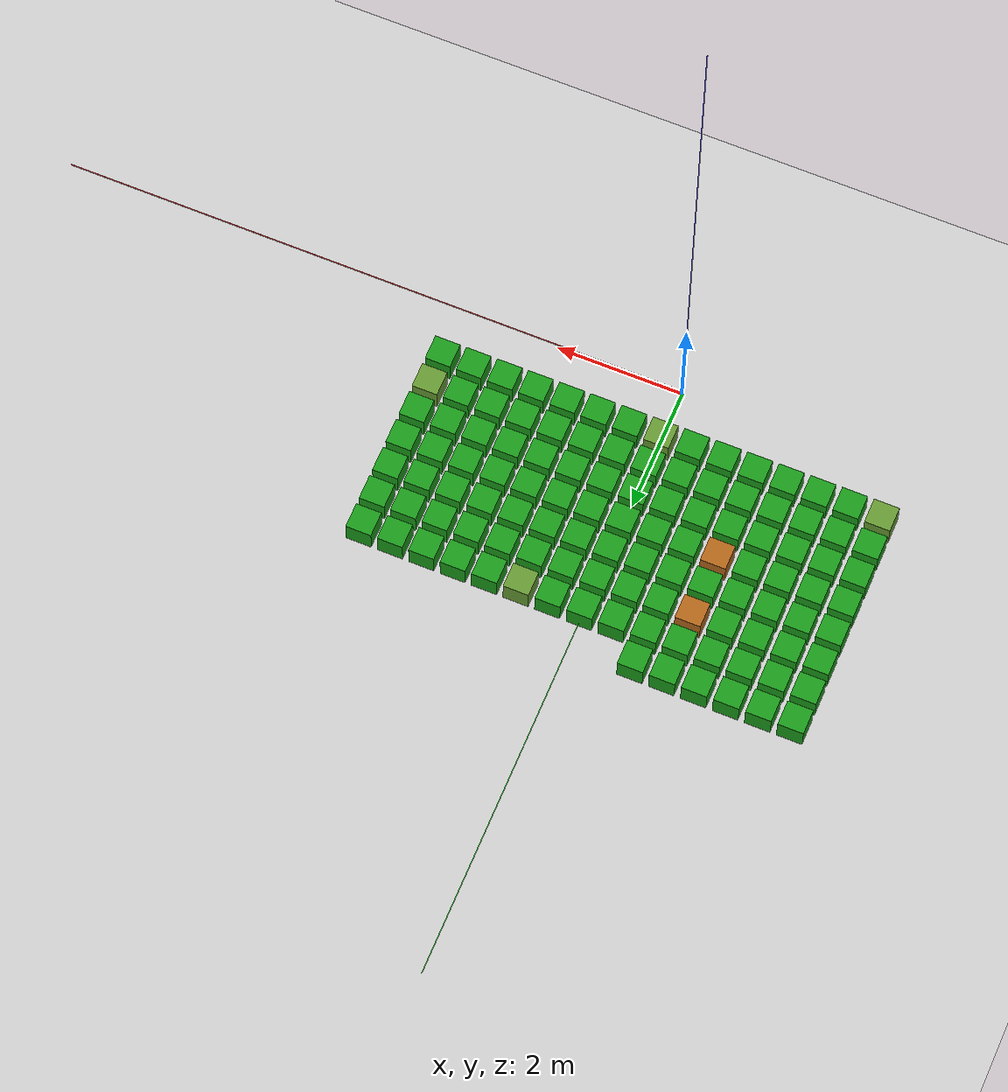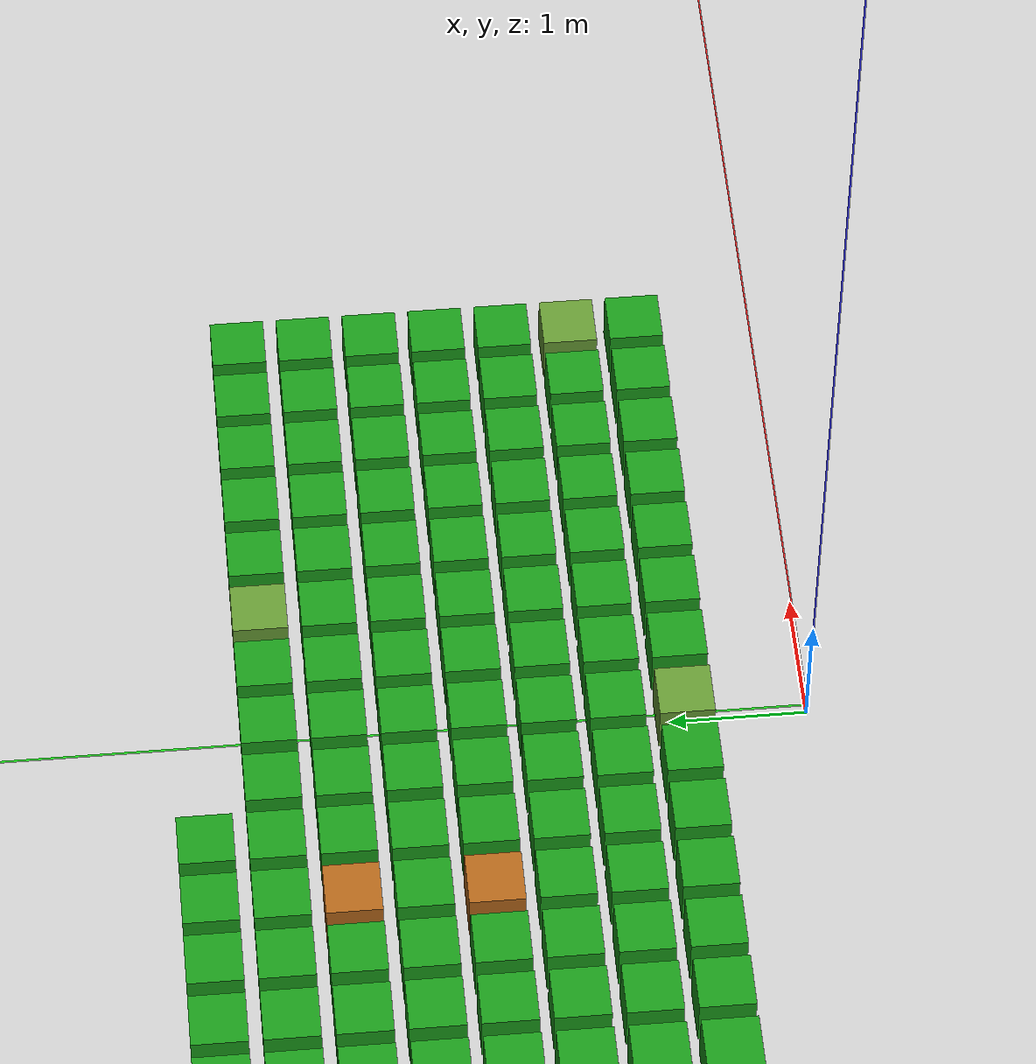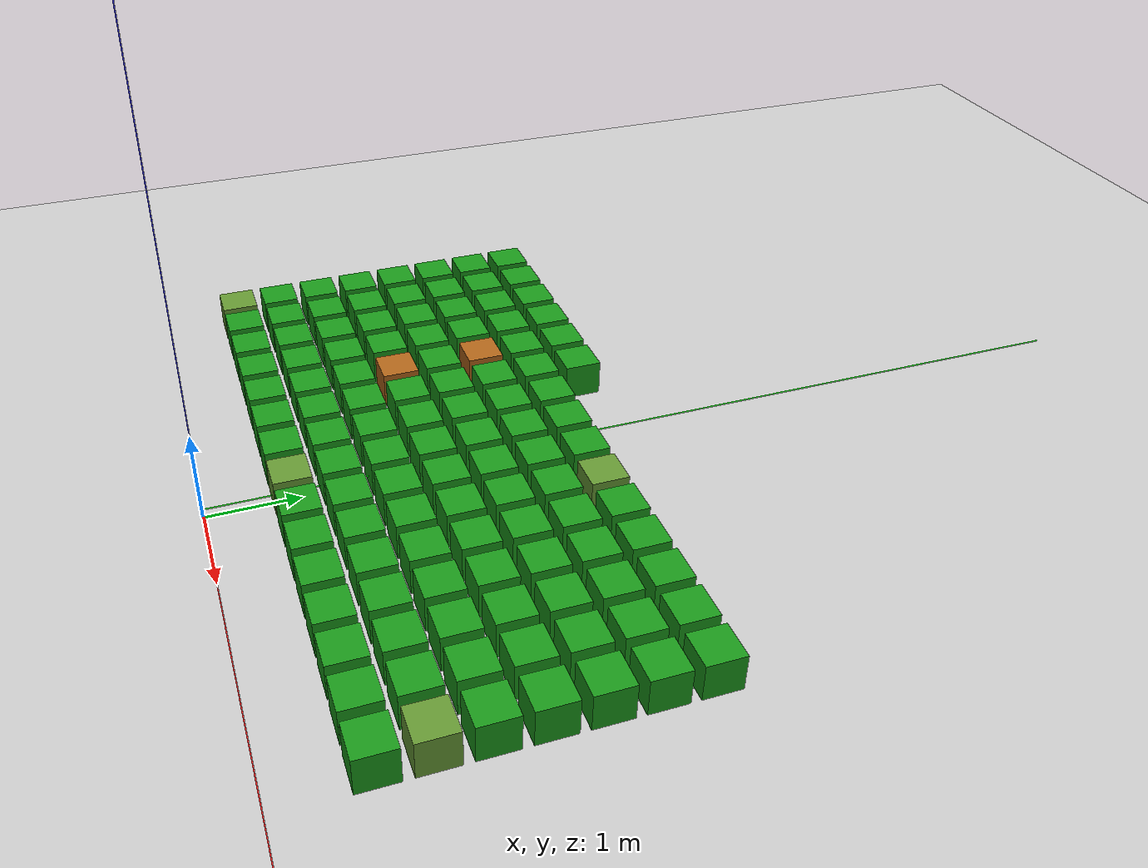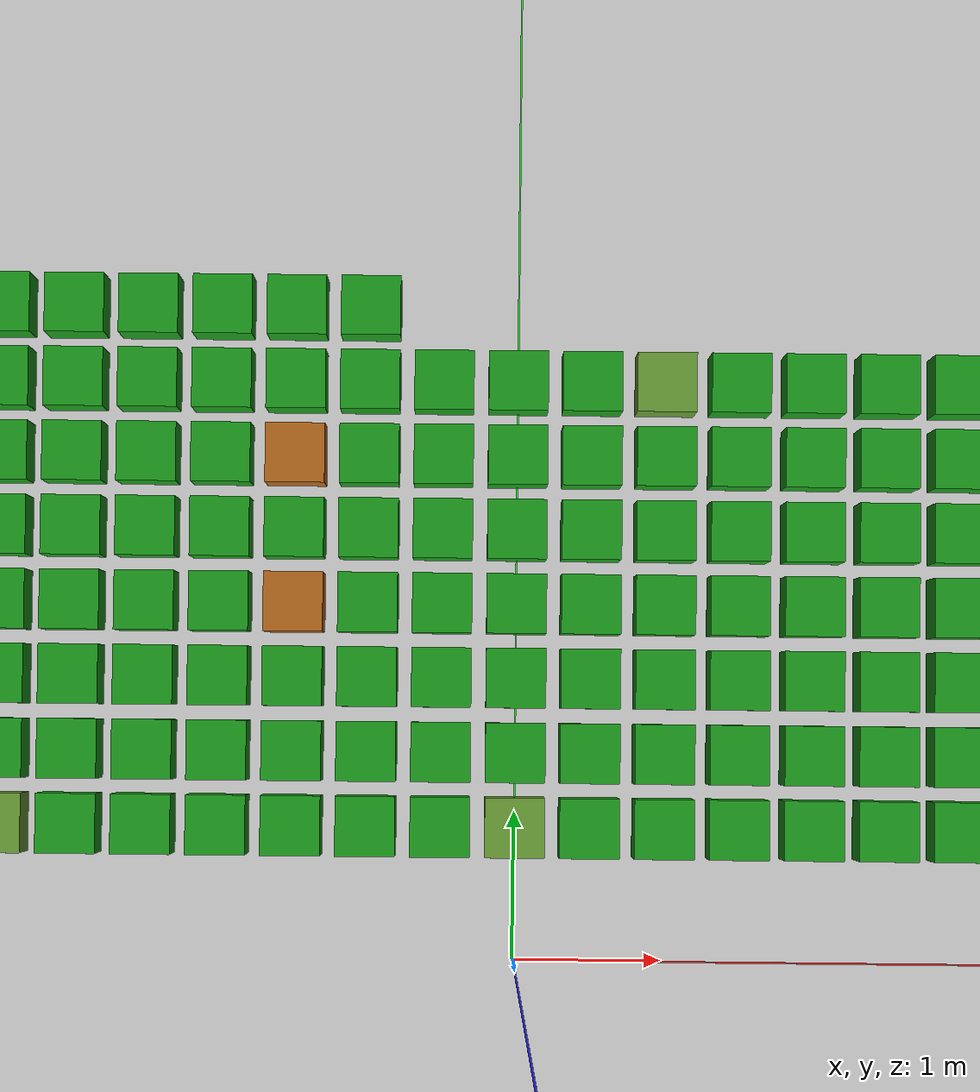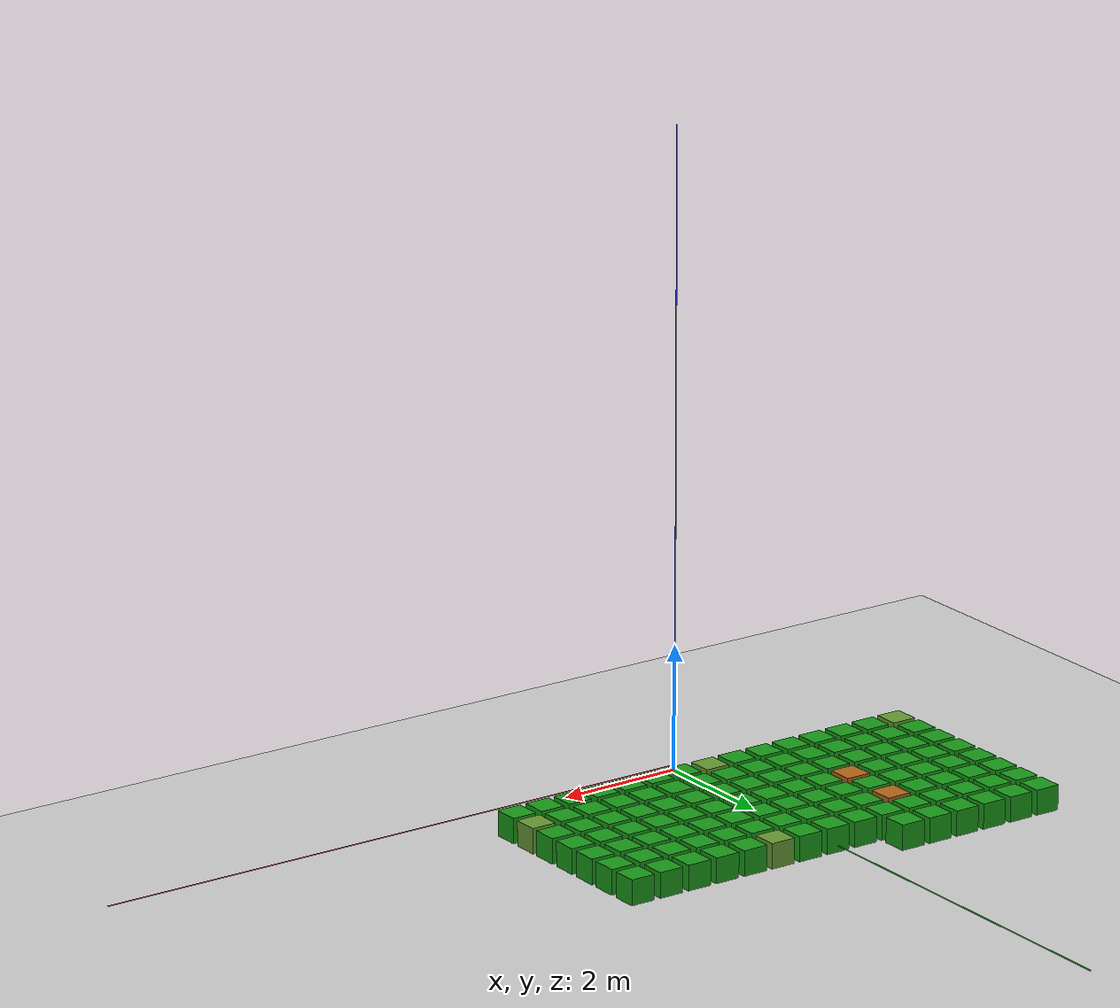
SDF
<sdf version="1.9">
 <world name="crop_detection">
  <model name="axes">
   <static>1</static>
   <link name="link">
    <visual name="r">
     <cast_shadows>0</cast_shadows>
     <pose>5 0 0.1 0 0 0</pose>
     <geometry><box><size>10 0.01 0.01</size></box></geometry>
     <material>
      <ambient>1 0 0 0.8</ambient>
      <diffuse>1 0 0 0.8</diffuse>
      <emissive>1 0 0 0.8</emissive>
      <specular>0.5 0.5 0.5 0.8</specular>
     </material>
    </visual>
    <visual name="g">
     <cast_shadows>0</cast_shadows>
     <pose>0 5 0.1 0 0 0</pose>
     <geometry><box><size>0.01 10 0.01</size></box></geometry>
     <material>
      <ambient>0 1 0 0.8</ambient>
      <diffuse>0 1 0 0.8</diffuse>
      <emissive>0 1 0 0.8</emissive>
      <specular>0.5 0.5 0.5 0.8</specular>
     </material>
    </visual>
    <visual name="b">
     <cast_shadows>0</cast_shadows>
     <pose>0 0 5.1 0 0 0</pose>
     <geometry><box><size>0.01 0.01 10</size></box></geometry>
     <material>
      <ambient>0 0 1 0.8</ambient>
      <diffuse>0 0 1 0.8</diffuse>
      <emissive>0 0 1 0.8</emissive>
      <specular>0.5 0.5 0.5 0.8</specular>
     </material>
    </visual>
    <sensor name="navsat_sensor" type="navsat"><always_on>1</always_on><update_rate>1</update_rate></sensor>
   </link>
  </model>
  <model name="ground_plane">
   <static>true</static>
   <link name="link">
    <collision name="collision">
     <geometry><plane><normal>0 0 1</normal><size>100 100</size></plane></geometry>
    </collision>
    <visual name="visual">
     <geometry><plane><normal>0 0 1</normal><size>100 100</size></plane></geometry>
     <material><script><uri>model://ground_plane</uri><name>Gazebo/DryDirt</name></script></material>
    </visual>
   </link>
  </model>
  <model name="crop_1">
   <static>true</static>
   <link name="link">
    <visual name="visual">
     <geometry><box><size>0.4 0.4 0.4</size></box></geometry>
     <material><ambient>0.4 0.6 0.2 1</ambient><diffuse>0.4 0.6 0.2 1</diffuse></material>
    </visual>
    <pose>-3.500 0.900 0.200 0 0 0</pose>
   </link>
  </model>
  <model name="crop_2">
   <static>true</static>
   <link name="link">
    <visual name="visual">
     <geometry><box><size>0.4 0.4 0.4</size></box></geometry>
     <material><ambient>0.1 0.6 0.1 1</ambient><diffuse>0.1 0.6 0.1 1</diffuse></material>
    </visual>
    <pose>-3.000 0.900 0.200 0 0 0</pose>
   </link>
  </model>
  <model name="crop_3">
   <static>true</static>
   <link name="link">
    <visual name="visual">
     <geometry><box><size>0.4 0.4 0.4</size></box></geometry>
     <material><ambient>0.1 0.6 0.1 1</ambient><diffuse>0.1 0.6 0.1 1</diffuse></material>
    </visual>
    <pose>-2.500 0.900 0.200 0 0 0</pose>
   </link>
  </model>
  <model name="crop_4">
   <static>true</static>
   <link name="link">
    <visual name="visual">
     <geometry><box><size>0.4 0.4 0.4</size></box></geometry>
     <material><ambient>0.1 0.6 0.1 1</ambient><diffuse>0.1 0.6 0.1 1</diffuse></material>
    </visual>
    <pose>-2.000 0.900 0.200 0 0 0</pose>
   </link>
  </model>
  <model name="crop_5">
   <static>true</static>
   <link name="link">
    <visual name="visual">
     <geometry><box><size>0.4 0.4 0.4</size></box></geometry>
     <material><ambient>0.1 0.6 0.1 1</ambient><diffuse>0.1 0.6 0.1 1</diffuse></material>
    </visual>
    <pose>-1.500 0.900 0.200 0 0 0</pose>
   </link>
  </model>
  <model name="crop_6">
   <static>true</static>
   <link name="link">
    <visual name="visual">
     <geometry><box><size>0.4 0.4 0.4</size></box></geometry>
     <material><ambient>0.1 0.6 0.1 1</ambient><diffuse>0.1 0.6 0.1 1</diffuse></material>
    </visual>
    <pose>-1.000 0.900 0.200 0 0 0</pose>
   </link>
  </model>
  <model name="crop_7">
   <static>true</static>
   <link name="link">
    <visual name="visual">
     <geometry><box><size>0.4 0.4 0.4</size></box></geometry>
     <material><ambient>0.1 0.6 0.1 1</ambient><diffuse>0.1 0.6 0.1 1</diffuse></material>
    </visual>
    <pose>-0.500 0.900 0.200 0 0 0</pose>
   </link>
  </model>
  <model name="crop_8">
   <static>true</static>
   <link name="link">
    <visual name="visual">
     <geometry><box><size>0.4 0.4 0.4</size></box></geometry>
     <material><ambient>0.4 0.6 0.2 1</ambient><diffuse>0.4 0.6 0.2 1</diffuse></material>
    </visual>
    <pose>0.000 0.900 0.200 0 0 0</pose>
   </link>
  </model>
  <model name="crop_9">
   <static>true</static>
   <link name="link">
    <visual name="visual">
     <geometry><box><size>0.4 0.4 0.4</size></box></geometry>
     <material><ambient>0.1 0.6 0.1 1</ambient><diffuse>0.1 0.6 0.1 1</diffuse></material>
    </visual>
    <pose>0.500 0.900 0.200 0 0 0</pose>
   </link>
  </model>
  <model name="crop_10">
   <static>true</static>
   <link name="link">
    <visual name="visual">
     <geometry><box><size>0.4 0.4 0.4</size></box></geometry>
     <material><ambient>0.1 0.6 0.1 1</ambient><diffuse>0.1 0.6 0.1 1</diffuse></material>
    </visual>
    <pose>1.000 0.900 0.200 0 0 0</pose>
   </link>
  </model>
  <model name="crop_11">
   <static>true</static>
   <link name="link">
    <visual name="visual">
     <geometry><box><size>0.4 0.4 0.4</size></box></geometry>
     <material><ambient>0.1 0.6 0.1 1</ambient><diffuse>0.1 0.6 0.1 1</diffuse></material>
    </visual>
    <pose>1.500 0.900 0.200 0 0 0</pose>
   </link>
  </model>
  <model name="crop_12">
   <static>true</static>
   <link name="link">
    <visual name="visual">
     <geometry><box><size>0.4 0.4 0.4</size></box></geometry>
     <material><ambient>0.1 0.6 0.1 1</ambient><diffuse>0.1 0.6 0.1 1</diffuse></material>
    </visual>
    <pose>2.000 0.900 0.200 0 0 0</pose>
   </link>
  </model>
  <model name="crop_13">
   <static>true</static>
   <link name="link">
    <visual name="visual">
     <geometry><box><size>0.4 0.4 0.4</size></box></geometry>
     <material><ambient>0.1 0.6 0.1 1</ambient><diffuse>0.1 0.6 0.1 1</diffuse></material>
    </visual>
    <pose>2.500 0.900 0.200 0 0 0</pose>
   </link>
  </model>
  <model name="crop_14">
   <static>true</static>
   <link name="link">
    <visual name="visual">
     <geometry><box><size>0.4 0.4 0.4</size></box></geometry>
     <material><ambient>0.1 0.6 0.1 1</ambient><diffuse>0.1 0.6 0.1 1</diffuse></material>
    </visual>
    <pose>3.000 0.900 0.200 0 0 0</pose>
   </link>
  </model>
  <model name="crop_15">
   <static>true</static>
   <link name="link">
    <visual name="visual">
     <geometry><box><size>0.4 0.4 0.4</size></box></geometry>
     <material><ambient>0.1 0.6 0.1 1</ambient><diffuse>0.1 0.6 0.1 1</diffuse></material>
    </visual>
    <pose>3.500 0.900 0.200 0 0 0</pose>
   </link>
  </model>
  <model name="crop_16">
   <static>true</static>
   <link name="link">
    <visual name="visual">
     <geometry><box><size>0.4 0.4 0.4</size></box></geometry>
     <material><ambient>0.1 0.6 0.1 1</ambient><diffuse>0.1 0.6 0.1 1</diffuse></material>
    </visual>
    <pose>-3.500 1.400 0.200 0 0 0</pose>
   </link>
  </model>
  <model name="crop_17">
   <static>true</static>
   <link name="link">
    <visual name="visual">
     <geometry><box><size>0.4 0.4 0.4</size></box></geometry>
     <material><ambient>0.1 0.6 0.1 1</ambient><diffuse>0.1 0.6 0.1 1</diffuse></material>
    </visual>
    <pose>-3.000 1.400 0.200 0 0 0</pose>
   </link>
  </model>
  <model name="crop_18">
   <static>true</static>
   <link name="link">
    <visual name="visual">
     <geometry><box><size>0.4 0.4 0.4</size></box></geometry>
     <material><ambient>0.1 0.6 0.1 1</ambient><diffuse>0.1 0.6 0.1 1</diffuse></material>
    </visual>
    <pose>-2.500 1.400 0.200 0 0 0</pose>
   </link>
  </model>
  <model name="crop_19">
   <static>true</static>
   <link name="link">
    <visual name="visual">
     <geometry><box><size>0.4 0.4 0.4</size></box></geometry>
     <material><ambient>0.1 0.6 0.1 1</ambient><diffuse>0.1 0.6 0.1 1</diffuse></material>
    </visual>
    <pose>-2.000 1.400 0.200 0 0 0</pose>
   </link>
  </model>
  <model name="crop_20">
   <static>true</static>
   <link name="link">
    <visual name="visual">
     <geometry><box><size>0.4 0.4 0.4</size></box></geometry>
     <material><ambient>0.1 0.6 0.1 1</ambient><diffuse>0.1 0.6 0.1 1</diffuse></material>
    </visual>
    <pose>-1.500 1.400 0.200 0 0 0</pose>
   </link>
  </model>
  <model name="crop_21">
   <static>true</static>
   <link name="link">
    <visual name="visual">
     <geometry><box><size>0.4 0.4 0.4</size></box></geometry>
     <material><ambient>0.1 0.6 0.1 1</ambient><diffuse>0.1 0.6 0.1 1</diffuse></material>
    </visual>
    <pose>-1.000 1.400 0.200 0 0 0</pose>
   </link>
  </model>
  <model name="crop_22">
   <static>true</static>
   <link name="link">
    <visual name="visual">
     <geometry><box><size>0.4 0.4 0.4</size></box></geometry>
     <material><ambient>0.1 0.6 0.1 1</ambient><diffuse>0.1 0.6 0.1 1</diffuse></material>
    </visual>
    <pose>-0.500 1.400 0.200 0 0 0</pose>
   </link>
  </model>
  <model name="crop_23">
   <static>true</static>
   <link name="link">
    <visual name="visual">
     <geometry><box><size>0.4 0.4 0.4</size></box></geometry>
     <material><ambient>0.1 0.6 0.1 1</ambient><diffuse>0.1 0.6 0.1 1</diffuse></material>
    </visual>
    <pose>0.000 1.400 0.200 0 0 0</pose>
   </link>
  </model>
  <model name="crop_24">
   <static>true</static>
   <link name="link">
    <visual name="visual">
     <geometry><box><size>0.4 0.4 0.4</size></box></geometry>
     <material><ambient>0.1 0.6 0.1 1</ambient><diffuse>0.1 0.6 0.1 1</diffuse></material>
    </visual>
    <pose>0.500 1.400 0.200 0 0 0</pose>
   </link>
  </model>
  <model name="crop_25">
   <static>true</static>
   <link name="link">
    <visual name="visual">
     <geometry><box><size>0.4 0.4 0.4</size></box></geometry>
     <material><ambient>0.1 0.6 0.1 1</ambient><diffuse>0.1 0.6 0.1 1</diffuse></material>
    </visual>
    <pose>1.000 1.400 0.200 0 0 0</pose>
   </link>
  </model>
  <model name="crop_26">
   <static>true</static>
   <link name="link">
    <visual name="visual">
     <geometry><box><size>0.4 0.4 0.4</size></box></geometry>
     <material><ambient>0.1 0.6 0.1 1</ambient><diffuse>0.1 0.6 0.1 1</diffuse></material>
    </visual>
    <pose>1.500 1.400 0.200 0 0 0</pose>
   </link>
  </model>
  <model name="crop_27">
   <static>true</static>
   <link name="link">
    <visual name="visual">
     <geometry><box><size>0.4 0.4 0.4</size></box></geometry>
     <material><ambient>0.1 0.6 0.1 1</ambient><diffuse>0.1 0.6 0.1 1</diffuse></material>
    </visual>
    <pose>2.000 1.400 0.200 0 0 0</pose>
   </link>
  </model>
  <model name="crop_28">
   <static>true</static>
   <link name="link">
    <visual name="visual">
     <geometry><box><size>0.4 0.4 0.4</size></box></geometry>
     <material><ambient>0.1 0.6 0.1 1</ambient><diffuse>0.1 0.6 0.1 1</diffuse></material>
    </visual>
    <pose>2.500 1.400 0.200 0 0 0</pose>
   </link>
  </model>
  <model name="crop_29">
   <static>true</static>
   <link name="link">
    <visual name="visual">
     <geometry><box><size>0.4 0.4 0.4</size></box></geometry>
     <material><ambient>0.1 0.6 0.1 1</ambient><diffuse>0.1 0.6 0.1 1</diffuse></material>
    </visual>
    <pose>3.000 1.400 0.200 0 0 0</pose>
   </link>
  </model>
  <model name="crop_30">
   <static>true</static>
   <link name="link">
    <visual name="visual">
     <geometry><box><size>0.4 0.4 0.4</size></box></geometry>
     <material><ambient>0.4 0.6 0.2 1</ambient><diffuse>0.4 0.6 0.2 1</diffuse></material>
    </visual>
    <pose>3.500 1.400 0.200 0 0 0</pose>
   </link>
  </model>
  <model name="crop_31">
   <static>true</static>
   <link name="link">
    <visual name="visual">
     <geometry><box><size>0.4 0.4 0.4</size></box></geometry>
     <material><ambient>0.1 0.6 0.1 1</ambient><diffuse>0.1 0.6 0.1 1</diffuse></material>
    </visual>
    <pose>-3.500 1.900 0.200 0 0 0</pose>
   </link>
  </model>
  <model name="crop_32">
   <static>true</static>
   <link name="link">
    <visual name="visual">
     <geometry><box><size>0.4 0.4 0.4</size></box></geometry>
     <material><ambient>0.1 0.6 0.1 1</ambient><diffuse>0.1 0.6 0.1 1</diffuse></material>
    </visual>
    <pose>-3.000 1.900 0.200 0 0 0</pose>
   </link>
  </model>
  <model name="crop_33">
   <static>true</static>
   <link name="link">
    <visual name="visual">
     <geometry><box><size>0.4 0.4 0.4</size></box></geometry>
     <material><ambient>0.1 0.6 0.1 1</ambient><diffuse>0.1 0.6 0.1 1</diffuse></material>
    </visual>
    <pose>-2.500 1.900 0.200 0 0 0</pose>
   </link>
  </model>
  <model name="crop_34">
   <static>true</static>
   <link name="link">
    <visual name="visual">
     <geometry><box><size>0.4 0.4 0.4</size></box></geometry>
     <material><ambient>0.1 0.6 0.1 1</ambient><diffuse>0.1 0.6 0.1 1</diffuse></material>
    </visual>
    <pose>-2.000 1.900 0.200 0 0 0</pose>
   </link>
  </model>
  <model name="crop_35">
   <static>true</static>
   <link name="link">
    <visual name="visual">
     <geometry><box><size>0.4 0.4 0.4</size></box></geometry>
     <material><ambient>0.1 0.6 0.1 1</ambient><diffuse>0.1 0.6 0.1 1</diffuse></material>
    </visual>
    <pose>-1.500 1.900 0.200 0 0 0</pose>
   </link>
  </model>
  <model name="crop_36">
   <static>true</static>
   <link name="link">
    <visual name="visual">
     <geometry><box><size>0.4 0.4 0.4</size></box></geometry>
     <material><ambient>0.1 0.6 0.1 1</ambient><diffuse>0.1 0.6 0.1 1</diffuse></material>
    </visual>
    <pose>-1.000 1.900 0.200 0 0 0</pose>
   </link>
  </model>
  <model name="crop_37">
   <static>true</static>
   <link name="link">
    <visual name="visual">
     <geometry><box><size>0.4 0.4 0.4</size></box></geometry>
     <material><ambient>0.1 0.6 0.1 1</ambient><diffuse>0.1 0.6 0.1 1</diffuse></material>
    </visual>
    <pose>-0.500 1.900 0.200 0 0 0</pose>
   </link>
  </model>
  <model name="crop_38">
   <static>true</static>
   <link name="link">
    <visual name="visual">
     <geometry><box><size>0.4 0.4 0.4</size></box></geometry>
     <material><ambient>0.1 0.6 0.1 1</ambient><diffuse>0.1 0.6 0.1 1</diffuse></material>
    </visual>
    <pose>0.000 1.900 0.200 0 0 0</pose>
   </link>
  </model>
  <model name="crop_39">
   <static>true</static>
   <link name="link">
    <visual name="visual">
     <geometry><box><size>0.4 0.4 0.4</size></box></geometry>
     <material><ambient>0.1 0.6 0.1 1</ambient><diffuse>0.1 0.6 0.1 1</diffuse></material>
    </visual>
    <pose>0.500 1.900 0.200 0 0 0</pose>
   </link>
  </model>
  <model name="crop_40">
   <static>true</static>
   <link name="link">
    <visual name="visual">
     <geometry><box><size>0.4 0.4 0.4</size></box></geometry>
     <material><ambient>0.1 0.6 0.1 1</ambient><diffuse>0.1 0.6 0.1 1</diffuse></material>
    </visual>
    <pose>1.000 1.900 0.200 0 0 0</pose>
   </link>
  </model>
  <model name="crop_41">
   <static>true</static>
   <link name="link">
    <visual name="visual">
     <geometry><box><size>0.4 0.4 0.4</size></box></geometry>
     <material><ambient>0.1 0.6 0.1 1</ambient><diffuse>0.1 0.6 0.1 1</diffuse></material>
    </visual>
    <pose>1.500 1.900 0.200 0 0 0</pose>
   </link>
  </model>
  <model name="crop_42">
   <static>true</static>
   <link name="link">
    <visual name="visual">
     <geometry><box><size>0.4 0.4 0.4</size></box></geometry>
     <material><ambient>0.1 0.6 0.1 1</ambient><diffuse>0.1 0.6 0.1 1</diffuse></material>
    </visual>
    <pose>2.000 1.900 0.200 0 0 0</pose>
   </link>
  </model>
  <model name="crop_43">
   <static>true</static>
   <link name="link">
    <visual name="visual">
     <geometry><box><size>0.4 0.4 0.4</size></box></geometry>
     <material><ambient>0.1 0.6 0.1 1</ambient><diffuse>0.1 0.6 0.1 1</diffuse></material>
    </visual>
    <pose>2.500 1.900 0.200 0 0 0</pose>
   </link>
  </model>
  <model name="crop_44">
   <static>true</static>
   <link name="link">
    <visual name="visual">
     <geometry><box><size>0.4 0.4 0.4</size></box></geometry>
     <material><ambient>0.1 0.6 0.1 1</ambient><diffuse>0.1 0.6 0.1 1</diffuse></material>
    </visual>
    <pose>3.000 1.900 0.200 0 0 0</pose>
   </link>
  </model>
  <model name="crop_45">
   <static>true</static>
   <link name="link">
    <visual name="visual">
     <geometry><box><size>0.4 0.4 0.4</size></box></geometry>
     <material><ambient>0.1 0.6 0.1 1</ambient><diffuse>0.1 0.6 0.1 1</diffuse></material>
    </visual>
    <pose>3.500 1.900 0.200 0 0 0</pose>
   </link>
  </model>
  <model name="crop_46">
   <static>true</static>
   <link name="link">
    <visual name="visual">
     <geometry><box><size>0.4 0.4 0.4</size></box></geometry>
     <material><ambient>0.1 0.6 0.1 1</ambient><diffuse>0.1 0.6 0.1 1</diffuse></material>
    </visual>
    <pose>-3.500 2.400 0.200 0 0 0</pose>
   </link>
  </model>
  <model name="crop_47">
   <static>true</static>
   <link name="link">
    <visual name="visual">
     <geometry><box><size>0.4 0.4 0.4</size></box></geometry>
     <material><ambient>0.1 0.6 0.1 1</ambient><diffuse>0.1 0.6 0.1 1</diffuse></material>
    </visual>
    <pose>-3.000 2.400 0.200 0 0 0</pose>
   </link>
  </model>
  <model name="crop_48">
   <static>true</static>
   <link name="link">
    <visual name="visual">
     <geometry><box><size>0.4 0.4 0.4</size></box></geometry>
     <material><ambient>0.1 0.6 0.1 1</ambient><diffuse>0.1 0.6 0.1 1</diffuse></material>
    </visual>
    <pose>-2.500 2.400 0.200 0 0 0</pose>
   </link>
  </model>
  <model name="crop_49">
   <static>true</static>
   <link name="link">
    <visual name="visual">
     <geometry><box><size>0.4 0.4 0.4</size></box></geometry>
     <material><ambient>0.1 0.6 0.1 1</ambient><diffuse>0.1 0.6 0.1 1</diffuse></material>
    </visual>
    <pose>-2.000 2.400 0.200 0 0 0</pose>
   </link>
  </model>
  <model name="crop_50">
   <static>true</static>
   <link name="link">
    <visual name="visual">
     <geometry><box><size>0.4 0.4 0.4</size></box></geometry>
     <material><ambient>0.7 0.4 0.1 1</ambient><diffuse>0.7 0.4 0.1 1</diffuse></material>
    </visual>
    <pose>-1.500 2.400 0.200 0 0 0</pose>
   </link>
  </model>
  <model name="crop_51">
   <static>true</static>
   <link name="link">
    <visual name="visual">
     <geometry><box><size>0.4 0.4 0.4</size></box></geometry>
     <material><ambient>0.1 0.6 0.1 1</ambient><diffuse>0.1 0.6 0.1 1</diffuse></material>
    </visual>
    <pose>-1.000 2.400 0.200 0 0 0</pose>
   </link>
  </model>
  <model name="crop_52">
   <static>true</static>
   <link name="link">
    <visual name="visual">
     <geometry><box><size>0.4 0.4 0.4</size></box></geometry>
     <material><ambient>0.1 0.6 0.1 1</ambient><diffuse>0.1 0.6 0.1 1</diffuse></material>
    </visual>
    <pose>-0.500 2.400 0.200 0 0 0</pose>
   </link>
  </model>
  <model name="crop_53">
   <static>true</static>
   <link name="link">
    <visual name="visual">
     <geometry><box><size>0.4 0.4 0.4</size></box></geometry>
     <material><ambient>0.1 0.6 0.1 1</ambient><diffuse>0.1 0.6 0.1 1</diffuse></material>
    </visual>
    <pose>0.000 2.400 0.200 0 0 0</pose>
   </link>
  </model>
  <model name="crop_54">
   <static>true</static>
   <link name="link">
    <visual name="visual">
     <geometry><box><size>0.4 0.4 0.4</size></box></geometry>
     <material><ambient>0.1 0.6 0.1 1</ambient><diffuse>0.1 0.6 0.1 1</diffuse></material>
    </visual>
    <pose>0.500 2.400 0.200 0 0 0</pose>
   </link>
  </model>
  <model name="crop_55">
   <static>true</static>
   <link name="link">
    <visual name="visual">
     <geometry><box><size>0.4 0.4 0.4</size></box></geometry>
     <material><ambient>0.1 0.6 0.1 1</ambient><diffuse>0.1 0.6 0.1 1</diffuse></material>
    </visual>
    <pose>1.000 2.400 0.200 0 0 0</pose>
   </link>
  </model>
  <model name="crop_56">
   <static>true</static>
   <link name="link">
    <visual name="visual">
     <geometry><box><size>0.4 0.4 0.4</size></box></geometry>
     <material><ambient>0.1 0.6 0.1 1</ambient><diffuse>0.1 0.6 0.1 1</diffuse></material>
    </visual>
    <pose>1.500 2.400 0.200 0 0 0</pose>
   </link>
  </model>
  <model name="crop_57">
   <static>true</static>
   <link name="link">
    <visual name="visual">
     <geometry><box><size>0.4 0.4 0.4</size></box></geometry>
     <material><ambient>0.1 0.6 0.1 1</ambient><diffuse>0.1 0.6 0.1 1</diffuse></material>
    </visual>
    <pose>2.000 2.400 0.200 0 0 0</pose>
   </link>
  </model>
  <model name="crop_58">
   <static>true</static>
   <link name="link">
    <visual name="visual">
     <geometry><box><size>0.4 0.4 0.4</size></box></geometry>
     <material><ambient>0.1 0.6 0.1 1</ambient><diffuse>0.1 0.6 0.1 1</diffuse></material>
    </visual>
    <pose>2.500 2.400 0.200 0 0 0</pose>
   </link>
  </model>
  <model name="crop_59">
   <static>true</static>
   <link name="link">
    <visual name="visual">
     <geometry><box><size>0.4 0.4 0.4</size></box></geometry>
     <material><ambient>0.1 0.6 0.1 1</ambient><diffuse>0.1 0.6 0.1 1</diffuse></material>
    </visual>
    <pose>3.000 2.400 0.200 0 0 0</pose>
   </link>
  </model>
  <model name="crop_60">
   <static>true</static>
   <link name="link">
    <visual name="visual">
     <geometry><box><size>0.4 0.4 0.4</size></box></geometry>
     <material><ambient>0.1 0.6 0.1 1</ambient><diffuse>0.1 0.6 0.1 1</diffuse></material>
    </visual>
    <pose>3.500 2.400 0.200 0 0 0</pose>
   </link>
  </model>
  <model name="crop_61">
   <static>true</static>
   <link name="link">
    <visual name="visual">
     <geometry><box><size>0.4 0.4 0.4</size></box></geometry>
     <material><ambient>0.1 0.6 0.1 1</ambient><diffuse>0.1 0.6 0.1 1</diffuse></material>
    </visual>
    <pose>-3.500 2.900 0.200 0 0 0</pose>
   </link>
  </model>
  <model name="crop_62">
   <static>true</static>
   <link name="link">
    <visual name="visual">
     <geometry><box><size>0.4 0.4 0.4</size></box></geometry>
     <material><ambient>0.1 0.6 0.1 1</ambient><diffuse>0.1 0.6 0.1 1</diffuse></material>
    </visual>
    <pose>-3.000 2.900 0.200 0 0 0</pose>
   </link>
  </model>
  <model name="crop_63">
   <static>true</static>
   <link name="link">
    <visual name="visual">
     <geometry><box><size>0.4 0.4 0.4</size></box></geometry>
     <material><ambient>0.1 0.6 0.1 1</ambient><diffuse>0.1 0.6 0.1 1</diffuse></material>
    </visual>
    <pose>-2.500 2.900 0.200 0 0 0</pose>
   </link>
  </model>
  <model name="crop_64">
   <static>true</static>
   <link name="link">
    <visual name="visual">
     <geometry><box><size>0.4 0.4 0.4</size></box></geometry>
     <material><ambient>0.1 0.6 0.1 1</ambient><diffuse>0.1 0.6 0.1 1</diffuse></material>
    </visual>
    <pose>-2.000 2.900 0.200 0 0 0</pose>
   </link>
  </model>
  <model name="crop_65">
   <static>true</static>
   <link name="link">
    <visual name="visual">
     <geometry><box><size>0.4 0.4 0.4</size></box></geometry>
     <material><ambient>0.1 0.6 0.1 1</ambient><diffuse>0.1 0.6 0.1 1</diffuse></material>
    </visual>
    <pose>-1.500 2.900 0.200 0 0 0</pose>
   </link>
  </model>
  <model name="crop_66">
   <static>true</static>
   <link name="link">
    <visual name="visual">
     <geometry><box><size>0.4 0.4 0.4</size></box></geometry>
     <material><ambient>0.1 0.6 0.1 1</ambient><diffuse>0.1 0.6 0.1 1</diffuse></material>
    </visual>
    <pose>-1.000 2.900 0.200 0 0 0</pose>
   </link>
  </model>
  <model name="crop_67">
   <static>true</static>
   <link name="link">
    <visual name="visual">
     <geometry><box><size>0.4 0.4 0.4</size></box></geometry>
     <material><ambient>0.1 0.6 0.1 1</ambient><diffuse>0.1 0.6 0.1 1</diffuse></material>
    </visual>
    <pose>-0.500 2.900 0.200 0 0 0</pose>
   </link>
  </model>
  <model name="crop_68">
   <static>true</static>
   <link name="link">
    <visual name="visual">
     <geometry><box><size>0.4 0.4 0.4</size></box></geometry>
     <material><ambient>0.1 0.6 0.1 1</ambient><diffuse>0.1 0.6 0.1 1</diffuse></material>
    </visual>
    <pose>0.000 2.900 0.200 0 0 0</pose>
   </link>
  </model>
  <model name="crop_69">
   <static>true</static>
   <link name="link">
    <visual name="visual">
     <geometry><box><size>0.4 0.4 0.4</size></box></geometry>
     <material><ambient>0.1 0.6 0.1 1</ambient><diffuse>0.1 0.6 0.1 1</diffuse></material>
    </visual>
    <pose>0.500 2.900 0.200 0 0 0</pose>
   </link>
  </model>
  <model name="crop_70">
   <static>true</static>
   <link name="link">
    <visual name="visual">
     <geometry><box><size>0.4 0.4 0.4</size></box></geometry>
     <material><ambient>0.1 0.6 0.1 1</ambient><diffuse>0.1 0.6 0.1 1</diffuse></material>
    </visual>
    <pose>1.000 2.900 0.200 0 0 0</pose>
   </link>
  </model>
  <model name="crop_71">
   <static>true</static>
   <link name="link">
    <visual name="visual">
     <geometry><box><size>0.4 0.4 0.4</size></box></geometry>
     <material><ambient>0.1 0.6 0.1 1</ambient><diffuse>0.1 0.6 0.1 1</diffuse></material>
    </visual>
    <pose>1.500 2.900 0.200 0 0 0</pose>
   </link>
  </model>
  <model name="crop_72">
   <static>true</static>
   <link name="link">
    <visual name="visual">
     <geometry><box><size>0.4 0.4 0.4</size></box></geometry>
     <material><ambient>0.1 0.6 0.1 1</ambient><diffuse>0.1 0.6 0.1 1</diffuse></material>
    </visual>
    <pose>2.000 2.900 0.200 0 0 0</pose>
   </link>
  </model>
  <model name="crop_73">
   <static>true</static>
   <link name="link">
    <visual name="visual">
     <geometry><box><size>0.4 0.4 0.4</size></box></geometry>
     <material><ambient>0.1 0.6 0.1 1</ambient><diffuse>0.1 0.6 0.1 1</diffuse></material>
    </visual>
    <pose>2.500 2.900 0.200 0 0 0</pose>
   </link>
  </model>
  <model name="crop_74">
   <static>true</static>
   <link name="link">
    <visual name="visual">
     <geometry><box><size>0.4 0.4 0.4</size></box></geometry>
     <material><ambient>0.1 0.6 0.1 1</ambient><diffuse>0.1 0.6 0.1 1</diffuse></material>
    </visual>
    <pose>3.000 2.900 0.200 0 0 0</pose>
   </link>
  </model>
  <model name="crop_75">
   <static>true</static>
   <link name="link">
    <visual name="visual">
     <geometry><box><size>0.4 0.4 0.4</size></box></geometry>
     <material><ambient>0.1 0.6 0.1 1</ambient><diffuse>0.1 0.6 0.1 1</diffuse></material>
    </visual>
    <pose>3.500 2.900 0.200 0 0 0</pose>
   </link>
  </model>
  <model name="crop_76">
   <static>true</static>
   <link name="link">
    <visual name="visual">
     <geometry><box><size>0.4 0.4 0.4</size></box></geometry>
     <material><ambient>0.1 0.6 0.1 1</ambient><diffuse>0.1 0.6 0.1 1</diffuse></material>
    </visual>
    <pose>-3.500 3.400 0.200 0 0 0</pose>
   </link>
  </model>
  <model name="crop_77">
   <static>true</static>
   <link name="link">
    <visual name="visual">
     <geometry><box><size>0.4 0.4 0.4</size></box></geometry>
     <material><ambient>0.1 0.6 0.1 1</ambient><diffuse>0.1 0.6 0.1 1</diffuse></material>
    </visual>
    <pose>-3.000 3.400 0.200 0 0 0</pose>
   </link>
  </model>
  <model name="crop_78">
   <static>true</static>
   <link name="link">
    <visual name="visual">
     <geometry><box><size>0.4 0.4 0.4</size></box></geometry>
     <material><ambient>0.1 0.6 0.1 1</ambient><diffuse>0.1 0.6 0.1 1</diffuse></material>
    </visual>
    <pose>-2.500 3.400 0.200 0 0 0</pose>
   </link>
  </model>
  <model name="crop_79">
   <static>true</static>
   <link name="link">
    <visual name="visual">
     <geometry><box><size>0.4 0.4 0.4</size></box></geometry>
     <material><ambient>0.1 0.6 0.1 1</ambient><diffuse>0.1 0.6 0.1 1</diffuse></material>
    </visual>
    <pose>-2.000 3.400 0.200 0 0 0</pose>
   </link>
  </model>
  <model name="crop_80">
   <static>true</static>
   <link name="link">
    <visual name="visual">
     <geometry><box><size>0.4 0.4 0.4</size></box></geometry>
     <material><ambient>0.7 0.4 0.1 1</ambient><diffuse>0.7 0.4 0.1 1</diffuse></material>
    </visual>
    <pose>-1.500 3.400 0.200 0 0 0</pose>
   </link>
  </model>
  <model name="crop_81">
   <static>true</static>
   <link name="link">
    <visual name="visual">
     <geometry><box><size>0.4 0.4 0.4</size></box></geometry>
     <material><ambient>0.1 0.6 0.1 1</ambient><diffuse>0.1 0.6 0.1 1</diffuse></material>
    </visual>
    <pose>-1.000 3.400 0.200 0 0 0</pose>
   </link>
  </model>
  <model name="crop_82">
   <static>true</static>
   <link name="link">
    <visual name="visual">
     <geometry><box><size>0.4 0.4 0.4</size></box></geometry>
     <material><ambient>0.1 0.6 0.1 1</ambient><diffuse>0.1 0.6 0.1 1</diffuse></material>
    </visual>
    <pose>-0.500 3.400 0.200 0 0 0</pose>
   </link>
  </model>
  <model name="crop_83">
   <static>true</static>
   <link name="link">
    <visual name="visual">
     <geometry><box><size>0.4 0.4 0.4</size></box></geometry>
     <material><ambient>0.1 0.6 0.1 1</ambient><diffuse>0.1 0.6 0.1 1</diffuse></material>
    </visual>
    <pose>0.000 3.400 0.200 0 0 0</pose>
   </link>
  </model>
  <model name="crop_84">
   <static>true</static>
   <link name="link">
    <visual name="visual">
     <geometry><box><size>0.4 0.4 0.4</size></box></geometry>
     <material><ambient>0.1 0.6 0.1 1</ambient><diffuse>0.1 0.6 0.1 1</diffuse></material>
    </visual>
    <pose>0.500 3.400 0.200 0 0 0</pose>
   </link>
  </model>
  <model name="crop_85">
   <static>true</static>
   <link name="link">
    <visual name="visual">
     <geometry><box><size>0.4 0.4 0.4</size></box></geometry>
     <material><ambient>0.1 0.6 0.1 1</ambient><diffuse>0.1 0.6 0.1 1</diffuse></material>
    </visual>
    <pose>1.000 3.400 0.200 0 0 0</pose>
   </link>
  </model>
  <model name="crop_86">
   <static>true</static>
   <link name="link">
    <visual name="visual">
     <geometry><box><size>0.4 0.4 0.4</size></box></geometry>
     <material><ambient>0.1 0.6 0.1 1</ambient><diffuse>0.1 0.6 0.1 1</diffuse></material>
    </visual>
    <pose>1.500 3.400 0.200 0 0 0</pose>
   </link>
  </model>
  <model name="crop_87">
   <static>true</static>
   <link name="link">
    <visual name="visual">
     <geometry><box><size>0.4 0.4 0.4</size></box></geometry>
     <material><ambient>0.1 0.6 0.1 1</ambient><diffuse>0.1 0.6 0.1 1</diffuse></material>
    </visual>
    <pose>2.000 3.400 0.200 0 0 0</pose>
   </link>
  </model>
  <model name="crop_88">
   <static>true</static>
   <link name="link">
    <visual name="visual">
     <geometry><box><size>0.4 0.4 0.4</size></box></geometry>
     <material><ambient>0.1 0.6 0.1 1</ambient><diffuse>0.1 0.6 0.1 1</diffuse></material>
    </visual>
    <pose>2.500 3.400 0.200 0 0 0</pose>
   </link>
  </model>
  <model name="crop_89">
   <static>true</static>
   <link name="link">
    <visual name="visual">
     <geometry><box><size>0.4 0.4 0.4</size></box></geometry>
     <material><ambient>0.1 0.6 0.1 1</ambient><diffuse>0.1 0.6 0.1 1</diffuse></material>
    </visual>
    <pose>3.000 3.400 0.200 0 0 0</pose>
   </link>
  </model>
  <model name="crop_90">
   <static>true</static>
   <link name="link">
    <visual name="visual">
     <geometry><box><size>0.4 0.4 0.4</size></box></geometry>
     <material><ambient>0.1 0.6 0.1 1</ambient><diffuse>0.1 0.6 0.1 1</diffuse></material>
    </visual>
    <pose>3.500 3.400 0.200 0 0 0</pose>
   </link>
  </model>
  <model name="crop_91">
   <static>true</static>
   <link name="link">
    <visual name="visual">
     <geometry><box><size>0.4 0.4 0.4</size></box></geometry>
     <material><ambient>0.1 0.6 0.1 1</ambient><diffuse>0.1 0.6 0.1 1</diffuse></material>
    </visual>
    <pose>-3.500 3.900 0.200 0 0 0</pose>
   </link>
  </model>
  <model name="crop_92">
   <static>true</static>
   <link name="link">
    <visual name="visual">
     <geometry><box><size>0.4 0.4 0.4</size></box></geometry>
     <material><ambient>0.1 0.6 0.1 1</ambient><diffuse>0.1 0.6 0.1 1</diffuse></material>
    </visual>
    <pose>-3.000 3.900 0.200 0 0 0</pose>
   </link>
  </model>
  <model name="crop_93">
   <static>true</static>
   <link name="link">
    <visual name="visual">
     <geometry><box><size>0.4 0.4 0.4</size></box></geometry>
     <material><ambient>0.1 0.6 0.1 1</ambient><diffuse>0.1 0.6 0.1 1</diffuse></material>
    </visual>
    <pose>-2.500 3.900 0.200 0 0 0</pose>
   </link>
  </model>
  <model name="crop_94">
   <static>true</static>
   <link name="link">
    <visual name="visual">
     <geometry><box><size>0.4 0.4 0.4</size></box></geometry>
     <material><ambient>0.1 0.6 0.1 1</ambient><diffuse>0.1 0.6 0.1 1</diffuse></material>
    </visual>
    <pose>-2.000 3.900 0.200 0 0 0</pose>
   </link>
  </model>
  <model name="crop_95">
   <static>true</static>
   <link name="link">
    <visual name="visual">
     <geometry><box><size>0.4 0.4 0.4</size></box></geometry>
     <material><ambient>0.1 0.6 0.1 1</ambient><diffuse>0.1 0.6 0.1 1</diffuse></material>
    </visual>
    <pose>-1.500 3.900 0.200 0 0 0</pose>
   </link>
  </model>
  <model name="crop_96">
   <static>true</static>
   <link name="link">
    <visual name="visual">
     <geometry><box><size>0.4 0.4 0.4</size></box></geometry>
     <material><ambient>0.1 0.6 0.1 1</ambient><diffuse>0.1 0.6 0.1 1</diffuse></material>
    </visual>
    <pose>-1.000 3.900 0.200 0 0 0</pose>
   </link>
  </model>
  <model name="crop_97">
   <static>true</static>
   <link name="link">
    <visual name="visual">
     <geometry><box><size>0.4 0.4 0.4</size></box></geometry>
     <material><ambient>0.1 0.6 0.1 1</ambient><diffuse>0.1 0.6 0.1 1</diffuse></material>
    </visual>
    <pose>-0.500 3.900 0.200 0 0 0</pose>
   </link>
  </model>
  <model name="crop_98">
   <static>true</static>
   <link name="link">
    <visual name="visual">
     <geometry><box><size>0.4 0.4 0.4</size></box></geometry>
     <material><ambient>0.1 0.6 0.1 1</ambient><diffuse>0.1 0.6 0.1 1</diffuse></material>
    </visual>
    <pose>0.000 3.900 0.200 0 0 0</pose>
   </link>
  </model>
  <model name="crop_99">
   <static>true</static>
   <link name="link">
    <visual name="visual">
     <geometry><box><size>0.4 0.4 0.4</size></box></geometry>
     <material><ambient>0.1 0.6 0.1 1</ambient><diffuse>0.1 0.6 0.1 1</diffuse></material>
    </visual>
    <pose>0.500 3.900 0.200 0 0 0</pose>
   </link>
  </model>
  <model name="crop_100">
   <static>true</static>
   <link name="link">
    <visual name="visual">
     <geometry><box><size>0.4 0.4 0.4</size></box></geometry>
     <material><ambient>0.4 0.6 0.2 1</ambient><diffuse>0.4 0.6 0.2 1</diffuse></material>
    </visual>
    <pose>1.000 3.900 0.200 0 0 0</pose>
   </link>
  </model>
  <model name="crop_101">
   <static>true</static>
   <link name="link">
    <visual name="visual">
     <geometry><box><size>0.4 0.4 0.4</size></box></geometry>
     <material><ambient>0.1 0.6 0.1 1</ambient><diffuse>0.1 0.6 0.1 1</diffuse></material>
    </visual>
    <pose>1.500 3.900 0.200 0 0 0</pose>
   </link>
  </model>
  <model name="crop_102">
   <static>true</static>
   <link name="link">
    <visual name="visual">
     <geometry><box><size>0.4 0.4 0.4</size></box></geometry>
     <material><ambient>0.1 0.6 0.1 1</ambient><diffuse>0.1 0.6 0.1 1</diffuse></material>
    </visual>
    <pose>2.000 3.900 0.200 0 0 0</pose>
   </link>
  </model>
  <model name="crop_103">
   <static>true</static>
   <link name="link">
    <visual name="visual">
     <geometry><box><size>0.4 0.4 0.4</size></box></geometry>
     <material><ambient>0.1 0.6 0.1 1</ambient><diffuse>0.1 0.6 0.1 1</diffuse></material>
    </visual>
    <pose>2.500 3.900 0.200 0 0 0</pose>
   </link>
  </model>
  <model name="crop_104">
   <static>true</static>
   <link name="link">
    <visual name="visual">
     <geometry><box><size>0.4 0.4 0.4</size></box></geometry>
     <material><ambient>0.1 0.6 0.1 1</ambient><diffuse>0.1 0.6 0.1 1</diffuse></material>
    </visual>
    <pose>3.000 3.900 0.200 0 0 0</pose>
   </link>
  </model>
  <model name="crop_105">
   <static>true</static>
   <link name="link">
    <visual name="visual">
     <geometry><box><size>0.4 0.4 0.4</size></box></geometry>
     <material><ambient>0.1 0.6 0.1 1</ambient><diffuse>0.1 0.6 0.1 1</diffuse></material>
    </visual>
    <pose>3.500 3.900 0.200 0 0 0</pose>
   </link>
  </model>
  <model name="crop_106">
   <static>true</static>
   <link name="link">
    <visual name="visual">
     <geometry><box><size>0.4 0.4 0.4</size></box></geometry>
     <material><ambient>0.1 0.6 0.1 1</ambient><diffuse>0.1 0.6 0.1 1</diffuse></material>
    </visual>
    <pose>-3.500 4.400 0.200 0 0 0</pose>
   </link>
  </model>
  <model name="crop_107">
   <static>true</static>
   <link name="link">
    <visual name="visual">
     <geometry><box><size>0.4 0.4 0.4</size></box></geometry>
     <material><ambient>0.1 0.6 0.1 1</ambient><diffuse>0.1 0.6 0.1 1</diffuse></material>
    </visual>
    <pose>-3.000 4.400 0.200 0 0 0</pose>
   </link>
  </model>
  <model name="crop_108">
   <static>true</static>
   <link name="link">
    <visual name="visual">
     <geometry><box><size>0.4 0.4 0.4</size></box></geometry>
     <material><ambient>0.1 0.6 0.1 1</ambient><diffuse>0.1 0.6 0.1 1</diffuse></material>
    </visual>
    <pose>-2.500 4.400 0.200 0 0 0</pose>
   </link>
  </model>
  <model name="crop_109">
   <static>true</static>
   <link name="link">
    <visual name="visual">
     <geometry><box><size>0.4 0.4 0.4</size></box></geometry>
     <material><ambient>0.1 0.6 0.1 1</ambient><diffuse>0.1 0.6 0.1 1</diffuse></material>
    </visual>
    <pose>-2.000 4.400 0.200 0 0 0</pose>
   </link>
  </model>
  <model name="crop_110">
   <static>true</static>
   <link name="link">
    <visual name="visual">
     <geometry><box><size>0.4 0.4 0.4</size></box></geometry>
     <material><ambient>0.1 0.6 0.1 1</ambient><diffuse>0.1 0.6 0.1 1</diffuse></material>
    </visual>
    <pose>-1.500 4.400 0.200 0 0 0</pose>
   </link>
  </model>
  <model name="crop_111">
   <static>true</static>
   <link name="link">
    <visual name="visual">
     <geometry><box><size>0.4 0.4 0.4</size></box></geometry>
     <material><ambient>0.1 0.6 0.1 1</ambient><diffuse>0.1 0.6 0.1 1</diffuse></material>
    </visual>
    <pose>-1.000 4.400 0.200 0 0 0</pose>
   </link>
  </model>
 </world>
</sdf>
